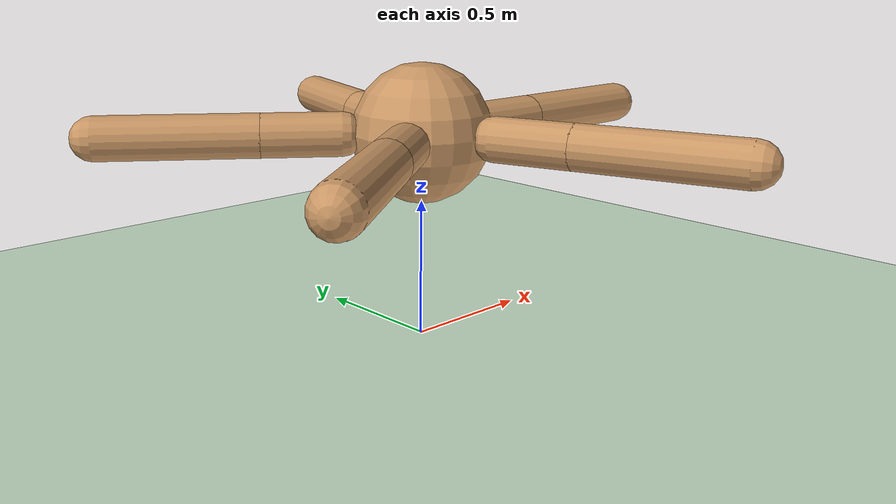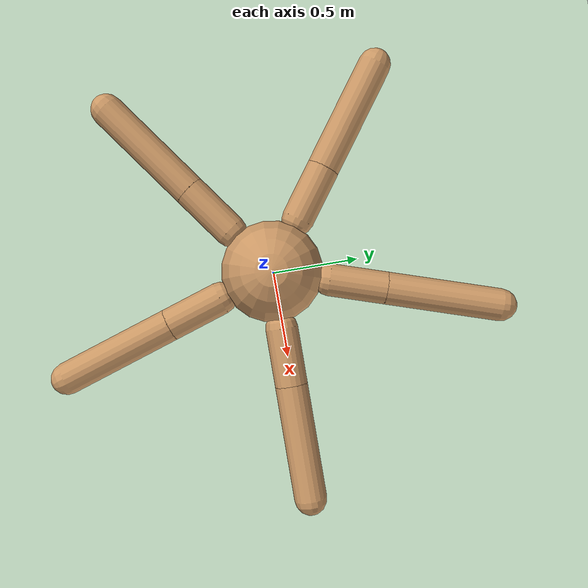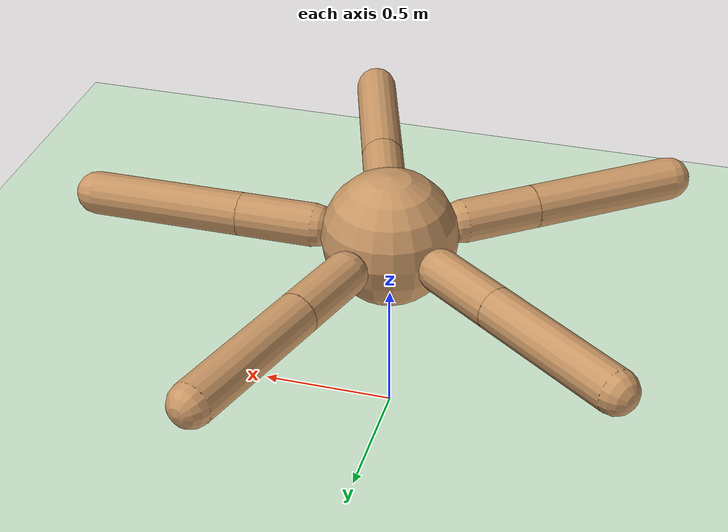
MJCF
<mujoco model="ant">
  <compiler angle="degree" coordinate="local" inertiafromgeom="true"/>
  <option integrator="RK4" timestep="0.01"/>
  <default>
    <joint armature="1" damping="1" limited="true"/>
    <geom conaffinity="0" condim="3" density="5.0" friction="1 0.5 0.5" margin="0.01" rgba="0.8 0.6 0.4 1"/>
  </default>
  <asset>
    <texture builtin="gradient" height="100" rgb1="1 1 1" rgb2="0 0 0" type="skybox" width="100"/>
    <texture builtin="flat" height="1278" mark="cross" markrgb="1 1 1" name="texgeom" random="0.01" rgb1="0.8 0.6 0.4" rgb2="0.8 0.6 0.4" type="cube" width="127"/>
    <texture builtin="checker" height="100" name="texplane" rgb1="0 0 0" rgb2="0.8 0.8 0.8" type="2d" width="100"/>
    <material name="MatPlane" reflectance="0.5" shininess="1" specular="1" texrepeat="60 60" texture="texplane"/>
    <material name="geom" texture="texgeom" texuniform="true"/>
  </asset>
  <worldbody>
    <light cutoff="100" diffuse="1 1 1" dir="-0 0 -1.3" directional="true" exponent="1" pos="0 0 1.3" specular=".1 .1 .1"/>
    <geom conaffinity="1" condim="3" material="MatPlane" name="floor" pos="0 0 0" rgba="0.8 0.9 0.8 1" size="40 40 40" type="plane"/>
    <body name="torso" pos="0 0 0.75">
      <geom name="torsoGeom" pos="0 0 0" size="0.25" type="sphere"/>
      <joint name="rootJoint" armature="0" damping="0" limited="false" margin="0.01" pos="0 0 0" type="free"/>

      <!-- 5 legs, evenly spaced every 72 degrees around the torso -->

      <body name="aux_1" pos="0.282843 0.0 0">
        <joint name="hip_1" axis="0 0 1" pos="0.0 0.0 0.0" range="-30 30" type="hinge"/>
        <geom name="legGeom_1" fromto="0.0 0.0 0.0 0.282843 0.0 0.0" size="0.08" type="capsule"/>
        <body name="f_1" pos="0.282843 0.0 0">
          <joint name="ankle_1" axis="0 1 0" pos="0.0 0.0 0.0" range="30 70" type="hinge"/>
          <geom name="ankleGeom_1" fromto="0.0 0.0 0.0 0.565685 0.0 0.0" size="0.08" type="capsule"/>
        </body>
      </body>

      <body name="aux_2" pos="0.087403 0.268999 0">
        <joint name="hip_2" axis="0 0 1" pos="0.0 0.0 0.0" range="-30 30" type="hinge"/>
        <geom name="legGeom_2" fromto="0.0 0.0 0.0 0.087403 0.268999 0.0" size="0.08" type="capsule"/>
        <body name="f_2" pos="0.087403 0.268999 0">
          <joint name="ankle_2" axis="-0.951057 0.309017 0" pos="0.0 0.0 0.0" range="30 70" type="hinge"/>
          <geom name="ankleGeom_2" fromto="0.0 0.0 0.0 0.174806 0.537999 0.0" size="0.08" type="capsule"/>
        </body>
      </body>

      <body name="aux_3" pos="-0.228825 0.166251 0">
        <joint name="hip_3" axis="0 0 1" pos="0.0 0.0 0.0" range="-30 30" type="hinge"/>
        <geom name="legGeom_3" fromto="0.0 0.0 0.0 -0.228825 0.166251 0.0" size="0.08" type="capsule"/>
        <body name="f_3" pos="-0.228825 0.166251 0">
          <joint name="ankle_3" axis="-0.587785 -0.809017 0" pos="0.0 0.0 0.0" range="30 70" type="hinge"/>
          <geom name="ankleGeom_3" fromto="0.0 0.0 0.0 -0.457649 0.332502 0.0" size="0.08" type="capsule"/>
        </body>
      </body>

      <body name="aux_4" pos="-0.228825 -0.166251 0">
        <joint name="hip_4" axis="0 0 1" pos="0.0 0.0 0.0" range="-30 30" type="hinge"/>
        <geom name="legGeom_4" fromto="0.0 0.0 0.0 -0.228825 -0.166251 0.0" size="0.08" type="capsule"/>
        <body name="f_4" pos="-0.228825 -0.166251 0">
          <joint name="ankle_4" axis="0.587785 -0.809017 0" pos="0.0 0.0 0.0" range="30 70" type="hinge"/>
          <geom name="ankleGeom_4" fromto="0.0 0.0 0.0 -0.457649 -0.332502 0.0" size="0.08" type="capsule"/>
        </body>
      </body>

      <body name="aux_5" pos="0.087403 -0.268999 0">
        <joint name="hip_5" axis="0 0 1" pos="0.0 0.0 0.0" range="-30 30" type="hinge"/>
        <geom name="legGeom_5" fromto="0.0 0.0 0.0 0.087403 -0.268999 0.0" size="0.08" type="capsule"/>
        <body name="f_5" pos="0.087403 -0.268999 0">
          <joint name="ankle_5" axis="0.951057 0.309017 0" pos="0.0 0.0 0.0" range="30 70" type="hinge"/>
          <geom name="ankleGeom_5" fromto="0.0 0.0 0.0 0.174806 -0.537999 0.0" size="0.08" type="capsule"/>
        </body>
      </body>

    </body>
  </worldbody>
  <actuator>
    <motor ctrllimited="true" ctrlrange="-1.0 1.0" joint="hip_1" gear="150"/>
    <motor ctrllimited="true" ctrlrange="-1.0 1.0" joint="ankle_1" gear="150"/>
    <motor ctrllimited="true" ctrlrange="-1.0 1.0" joint="hip_2" gear="150"/>
    <motor ctrllimited="true" ctrlrange="-1.0 1.0" joint="ankle_2" gear="150"/>
    <motor ctrllimited="true" ctrlrange="-1.0 1.0" joint="hip_3" gear="150"/>
    <motor ctrllimited="true" ctrlrange="-1.0 1.0" joint="ankle_3" gear="150"/>
    <motor ctrllimited="true" ctrlrange="-1.0 1.0" joint="hip_4" gear="150"/>
    <motor ctrllimited="true" ctrlrange="-1.0 1.0" joint="ankle_4" gear="150"/>
    <motor ctrllimited="true" ctrlrange="-1.0 1.0" joint="hip_5" gear="150"/>
    <motor ctrllimited="true" ctrlrange="-1.0 1.0" joint="ankle_5" gear="150"/>
  </actuator>
</mujoco>
